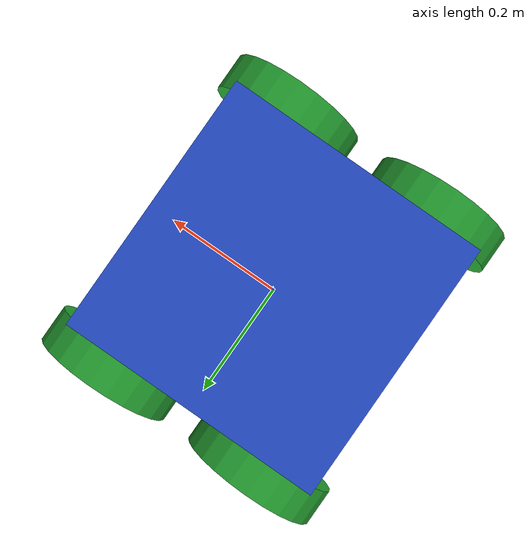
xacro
<?xml version="1.0"?>
<robot xmlns:xacro="http://www.ros.org/wiki/xacro">

  <xacro:property name="base_length" value="0.4"/>
  <xacro:property name="base_width" value="0.4"/>
  <xacro:property name="base_heigh" value="0.2"/>
  <xacro:property name="wheel_radius" value="0.11" />
  <xacro:property name="wheel_length" value="0.058" />

  <!--  links-->
  <link name="base_footprint" />

  <link name="base_link">
    <visual>
      <geometry>
        <box size="${base_length} ${base_width} ${base_heigh}"/>
      </geometry>
      <origin xyz="0 0 ${base_heigh/2.0}" rpy="0 0 0"/>
      <material name="blue" />
    </visual>
    <collision>
      <origin xyz="0 0 ${base_heigh/2.0}" rpy="0 0 0"/>
      <geometry>
        <box size="${base_length} ${base_width} ${base_heigh}"/>
      </geometry>
    </collision>
    <xacro:box_inertia m="10" x="${base_length}" y="${base_width}" z="${base_heigh}" o_xyz="0 0 ${base_heigh/2.0}" o_rpy="0 0 0" />
  </link>

  <xacro:macro name="wheel_link" params="prefix">
    <link name="${prefix}_wheel_link">
      <visual>
        <geometry>
          <cylinder radius="${wheel_radius}" length="${wheel_length}"/>
        </geometry>
        <origin xyz="0 0 0" rpy="${pi/2} 0 0"/>
        <material name="green" />
      </visual>
      <collision>
        <origin xyz="0 0 0" rpy="${pi/2} 0 0"/>
        <geometry>
          <cylinder radius="${wheel_radius}" length="${wheel_length}"/>
        </geometry>
      </collision>
      <xacro:cylinder_inertia m="3.0" r="${wheel_radius}" h="${wheel_length}" o_xyz="0 0 0" o_rpy="${pi/2} 0 0" />
    </link>
  </xacro:macro>

  <xacro:wheel_link prefix="right_front" />
  <xacro:wheel_link prefix="left_front" />
  <xacro:wheel_link prefix="right_rear" />
  <xacro:wheel_link prefix="left_rear" />

  <joint name="base_joint" type="fixed">
    <parent link="base_footprint" />
    <child link="base_link" />
    <origin xyz="0 0 0.055" rpy="0 0 0" />
  </joint>

  <joint name="base_rf_wheel_joint" type="continuous">
    <parent link="base_link" />
    <child link="right_front_wheel_link" />
    <origin xyz="${base_length/3} ${-1*(base_width + wheel_length)/2} ${base_heigh/4}" rpy="0.0 0.0 0.0" />
    <axis xyz="0 1 0"/>
  </joint>

  <joint name="base_rr_wheel_joint" type="continuous">
    <parent link="base_link" />
    <child link="right_rear_wheel_link" />
    <origin xyz="${-base_length/3} ${-1*(base_width + wheel_length)/2} ${base_heigh/4}" rpy="0.0 0.0 0.0" />
    <axis xyz="0 1 0"/>
  </joint>

  <joint name="base_lf_wheel_joint" type="continuous">
    <parent link="base_link" />
    <child link="left_front_wheel_link" />
    <origin xyz="${base_length/3} ${(base_width + wheel_length)/2} ${base_heigh/4}" rpy="0.0 0.0 0.0" />
    <axis xyz="0 1 0"/>
  </joint>

  <joint name="base_lr_wheel_joint" type="continuous">
    <parent link="base_link" />
    <child link="left_rear_wheel_link" />
    <origin xyz="${-base_length/3} ${(base_width+wheel_length)/2} ${base_heigh/4}" rpy="0.0 0.0 0.0" />
    <axis xyz="0 1 0"/>
  </joint>

</robot>
